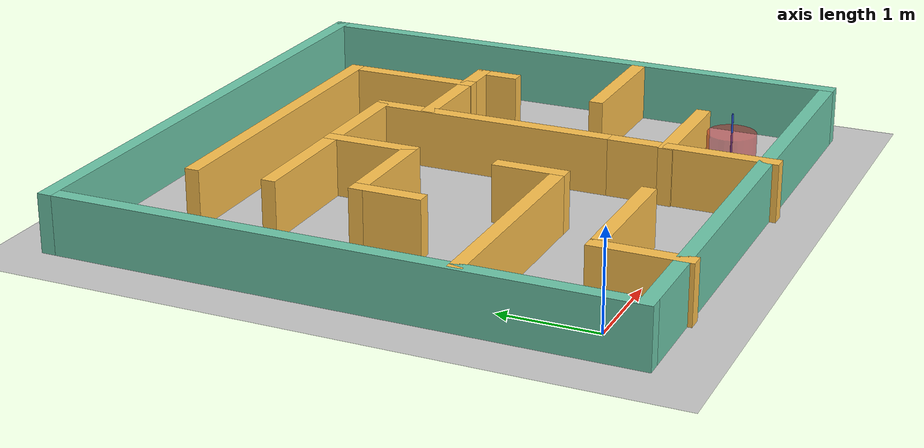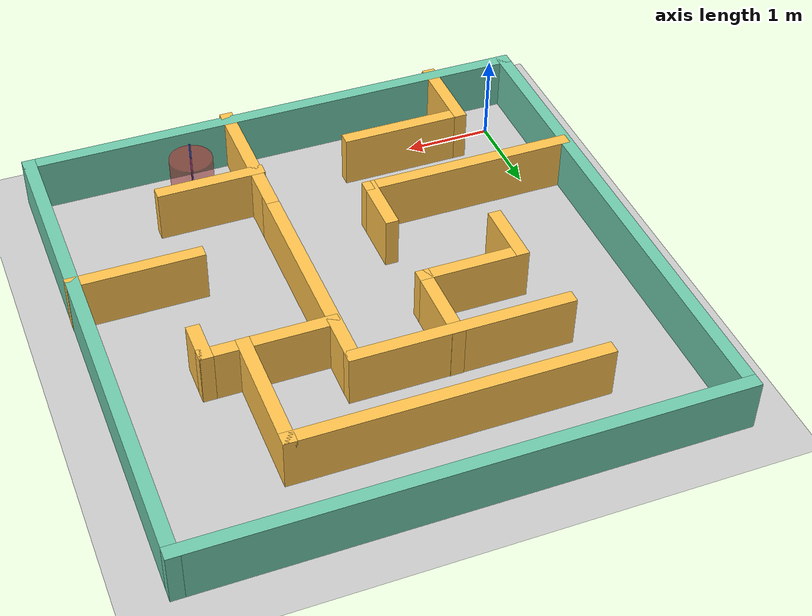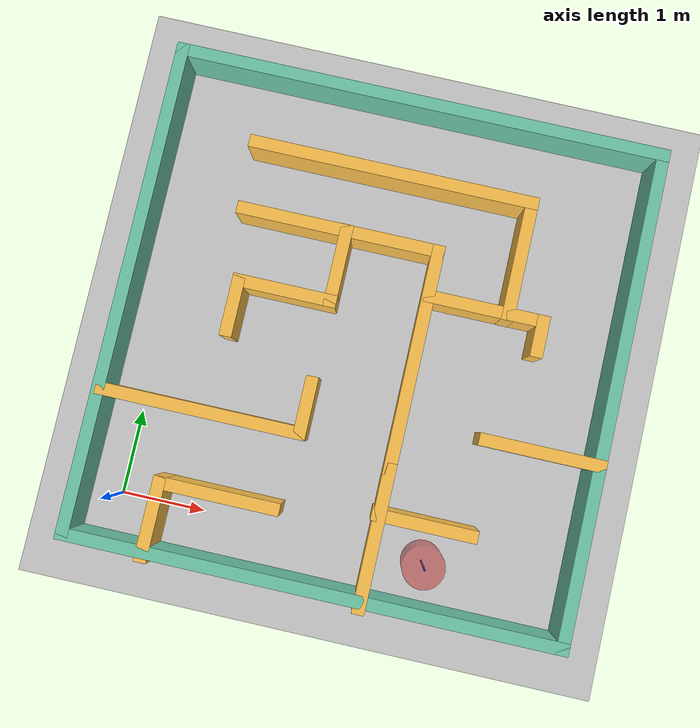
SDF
<sdf version="1.7">
 <world name="default">
  <light name="sun" type="directional">
   <pose>0 0 10 0 -0 0</pose>
   <diffuse>0.8 0.8 0.8 1</diffuse>
   <specular>0.2 0.2 0.2 1</specular>
   <attenuation>
    <range>1000</range>
    <constant>0.9</constant>
    <linear>0.01</linear>
    <quadratic>0.001</quadratic>
   </attenuation>
   <direction>-0.5 0.1 -0.9</direction>
   <spot><inner_angle>0</inner_angle><outer_angle>0</outer_angle><falloff>0</falloff></spot>
  </light>
  <model name="ground_plane">
   <static>1</static>
   <link name="link">
    <collision name="collision">
     <geometry><plane><normal>0 0 1</normal><size>100 100</size></plane></geometry>
     <surface><friction><ode><mu>100</mu><mu2>50</mu2></ode></friction></surface>
    </collision>
    <visual name="visual">
     <cast_shadows>0</cast_shadows>
     <geometry><plane><normal>0 0 1</normal><size>100 100</size></plane></geometry>
     <material>
      <script><uri>file://media/materials/scripts/gazebo.material</uri><name>Gazebo/Grey</name></script>
     </material>
    </visual>
   </link>
  </model>
  <gravity>0 0 -9.8</gravity>
  <magnetic_field>6e-06 2.3e-05 -4.2e-05</magnetic_field>
  <atmosphere type="adiabatic"/>
  <physics type="ode">
   <max_step_size>0.001</max_step_size>
   <real_time_factor>1</real_time_factor>
   <real_time_update_rate>1000</real_time_update_rate>
  </physics>
  <scene><ambient>0.4 0.4 0.4 1</ambient><background>0.7 0.7 0.7 1</background><shadows>1</shadows></scene>
  <audio><device>default</device></audio>
  <spherical_coordinates>
   <surface_model>EARTH_WGS84</surface_model>
   <latitude_deg>0</latitude_deg>
   <longitude_deg>0</longitude_deg>
   <elevation>0</elevation>
   <heading_deg>0</heading_deg>
  </spherical_coordinates>
  <model name="simple_maze">
   <pose>3.13892 2.35527 0 0 -0 0</pose>
   <link name="Wall_1">
    <collision name="Wall_1_Collision">
     <geometry><box><size>6 0.15 0.6</size></box></geometry>
     <pose>0 0 0.3 0 -0 0</pose>
    </collision>
    <visual name="Wall_1_Visual">
     <pose>0 0 0.3 0 -0 0</pose>
     <geometry><box><size>6 0.15 0.6</size></box></geometry>
     <material>
      <script><uri>file://media/materials/scripts/gazebo.material</uri><name>Gazebo/Grey</name></script>
      <ambient>0.435294 0.796078 0.67451 1</ambient>
     </material>
     <meta><layer>0</layer></meta>
    </visual>
    <pose>-3.58316 0.031695 0 0 -0 -1.5708</pose>
   </link>
   <link name="Wall_11">
    <collision name="Wall_11_Collision">
     <geometry><box><size>2.75 0.15 0.6</size></box></geometry>
     <pose>0 0 0.3 0 -0 0</pose>
    </collision>
    <visual name="Wall_11_Visual">
     <pose>0 0 0.3 0 -0 0</pose>
     <geometry><box><size>2.75 0.15 0.6</size></box></geometry>
     <material>
      <script><uri>file://media/materials/scripts/gazebo.material</uri><name>Gazebo/Grey</name></script>
      <ambient>1 0.764706 0.305882 1</ambient>
     </material>
     <meta><layer>0</layer></meta>
    </visual>
    <pose>-0.083403 -0.056695 0 0 -0 1.5708</pose>
   </link>
   <link name="Wall_12">
    <collision name="Wall_12_Collision">
     <geometry><box><size>2.5 0.15 0.6</size></box></geometry>
     <pose>0 0 0.3 0 -0 0</pose>
    </collision>
    <visual name="Wall_12_Visual">
     <pose>0 0 0.3 0 -0 0</pose>
     <geometry><box><size>2.5 0.15 0.6</size></box></geometry>
     <material>
      <script><uri>file://media/materials/scripts/gazebo.material</uri><name>Gazebo/Grey</name></script>
      <ambient>1 0.764706 0.305882 1</ambient>
     </material>
     <meta><layer>0</layer></meta>
    </visual>
    <pose>-1.2584 1.24331 0 0 -0 3.14159</pose>
   </link>
   <link name="Wall_14">
    <collision name="Wall_14_Collision">
     <geometry><box><size>1 0.15 0.6</size></box></geometry>
     <pose>0 0 0.3 0 -0 0</pose>
    </collision>
    <visual name="Wall_14_Visual">
     <pose>0 0 0.3 0 -0 0</pose>
     <geometry><box><size>1 0.15 0.6</size></box></geometry>
     <material>
      <script><uri>file://media/materials/scripts/gazebo.material</uri><name>Gazebo/Grey</name></script>
      <ambient>1 0.764706 0.305882 1</ambient>
     </material>
     <meta><layer>0</layer></meta>
    </visual>
    <pose>-1.18965 0.822041 0 0 -0 -1.5708</pose>
   </link>
   <link name="Wall_16">
    <collision name="Wall_16_Collision">
     <geometry><box><size>0.75 0.15 0.6</size></box></geometry>
     <pose>0 0 0.3 0 -0 0</pose>
    </collision>
    <visual name="Wall_16_Visual">
     <pose>0 0 0.3 0 -0 0</pose>
     <geometry><box><size>0.75 0.15 0.6</size></box></geometry>
     <material>
      <script><uri>file://media/materials/scripts/gazebo.material</uri><name>Gazebo/Grey</name></script>
      <ambient>1 0.764706 0.305882 1</ambient>
     </material>
     <meta><layer>0</layer></meta>
    </visual>
    <pose>-1.18965 -0.883294 0 0 -0 -1.5708</pose>
   </link>
   <link name="Wall_19">
    <collision name="Wall_19_Collision">
     <geometry><box><size>2.5 0.15 0.6</size></box></geometry>
     <pose>0 0 0.3 0 -0 0</pose>
    </collision>
    <visual name="Wall_19_Visual">
     <pose>0 0 0.3 0 -0 0</pose>
     <geometry><box><size>2.5 0.15 0.6</size></box></geometry>
     <material>
      <script><uri>file://media/materials/scripts/gazebo.material</uri><name>Gazebo/Grey</name></script>
      <ambient>1 0.764706 0.305882 1</ambient>
     </material>
     <meta><layer>0</layer></meta>
    </visual>
    <pose>-2.36465 -1.18329 0 0 -0 3.14159</pose>
   </link>
   <link name="Wall_2">
    <collision name="Wall_2_Collision">
     <geometry><box><size>6 0.15 0.6</size></box></geometry>
     <pose>0 0 0.3 0 -0 0</pose>
    </collision>
    <visual name="Wall_2_Visual">
     <pose>0 0 0.3 0 -0 0</pose>
     <geometry><box><size>6 0.15 0.6</size></box></geometry>
     <material>
      <script><uri>file://media/materials/scripts/gazebo.material</uri><name>Gazebo/Grey</name></script>
      <ambient>0.435294 0.796078 0.67451 1</ambient>
     </material>
     <meta><layer>0</layer></meta>
    </visual>
    <pose>-0.658165 -2.8933 0 0 -0 0</pose>
   </link>
   <link name="Wall_21">
    <collision name="Wall_21_Collision">
     <geometry><box><size>1.25 0.15 0.6</size></box></geometry>
     <pose>0 0 0.3 0 -0 0</pose>
    </collision>
    <visual name="Wall_21_Visual">
     <pose>0 0 0.3 0 -0 0</pose>
     <geometry><box><size>1.25 0.15 0.6</size></box></geometry>
     <material>
      <script><uri>file://media/materials/scripts/gazebo.material</uri><name>Gazebo/Grey</name></script>
      <ambient>1 0.764706 0.305882 1</ambient>
     </material>
     <meta><layer>0</layer></meta>
    </visual>
    <pose>-1.73965 0.397041 0 0 -0 3.14159</pose>
   </link>
   <link name="Wall_22">
    <collision name="Wall_22_Collision">
     <geometry><box><size>0.75 0.15 0.6</size></box></geometry>
     <pose>0 0 0.3 0 -0 0</pose>
    </collision>
    <visual name="Wall_22_Visual">
     <pose>0 0 0.3 0 -0 0</pose>
     <geometry><box><size>0.75 0.15 0.6</size></box></geometry>
     <material>
      <script><uri>file://media/materials/scripts/gazebo.material</uri><name>Gazebo/Grey</name></script>
      <ambient>1 0.764706 0.305882 1</ambient>
     </material>
     <meta><layer>0</layer></meta>
    </visual>
    <pose>-2.28965 0.097041 0 0 -0 -1.5708</pose>
   </link>
   <link name="Wall_24">
    <collision name="Wall_24_Collision">
     <geometry><box><size>1.25 0.15 0.6</size></box></geometry>
     <pose>0 0 0.3 0 -0 0</pose>
    </collision>
    <visual name="Wall_24_Visual">
     <pose>0 0 0.3 0 -0 0</pose>
     <geometry><box><size>1.25 0.15 0.6</size></box></geometry>
     <material>
      <script><uri>file://media/materials/scripts/gazebo.material</uri><name>Gazebo/Grey</name></script>
      <ambient>1 0.764706 0.305882 1</ambient>
     </material>
     <meta><layer>0</layer></meta>
    </visual>
    <pose>0.446484 -1.89068 0 0 -0 0</pose>
   </link>
   <link name="Wall_26">
    <collision name="Wall_26_Collision">
     <geometry><box><size>1.5 0.15 0.6</size></box></geometry>
     <pose>0 0 0.3 0 -0 0</pose>
    </collision>
    <visual name="Wall_26_Visual">
     <pose>0 0 0.3 0 -0 0</pose>
     <geometry><box><size>1.5 0.15 0.6</size></box></geometry>
     <material>
      <script><uri>file://media/materials/scripts/gazebo.material</uri><name>Gazebo/Grey</name></script>
      <ambient>1 0.764706 0.305882 1</ambient>
     </material>
     <meta><layer>0</layer></meta>
    </visual>
    <pose>1.59489 -0.78443 0 0 -0 3.14159</pose>
   </link>
   <link name="Wall_28">
    <collision name="Wall_28_Collision">
     <geometry><box><size>1.5 0.15 0.6</size></box></geometry>
     <pose>0 0 0.3 0 -0 0</pose>
    </collision>
    <visual name="Wall_28_Visual">
     <pose>0 0 0.3 0 -0 0</pose>
     <geometry><box><size>1.5 0.15 0.6</size></box></geometry>
     <material>
      <script><uri>file://media/materials/scripts/gazebo.material</uri><name>Gazebo/Grey</name></script>
      <ambient>1 0.764706 0.305882 1</ambient>
     </material>
     <meta><layer>0</layer></meta>
    </visual>
    <pose>0.611711 0.703975 0 0 -0 0</pose>
   </link>
   <link name="Wall_3">
    <collision name="Wall_3_Collision">
     <geometry><box><size>6 0.15 0.6</size></box></geometry>
     <pose>0 0 0.3 0 -0 0</pose>
    </collision>
    <visual name="Wall_3_Visual">
     <pose>0 0 0.3 0 -0 0</pose>
     <geometry><box><size>6 0.15 0.6</size></box></geometry>
     <material>
      <script><uri>file://media/materials/scripts/gazebo.material</uri><name>Gazebo/Grey</name></script>
      <ambient>0.435294 0.796078 0.67451 1</ambient>
     </material>
     <meta><layer>0</layer></meta>
    </visual>
    <pose>2.26684 0.031695 0 0 -0 1.5708</pose>
   </link>
   <link name="Wall_32">
    <collision name="Wall_32_Collision">
     <geometry><box><size>3.5 0.15 0.6</size></box></geometry>
     <pose>0 0 0.3 0 -0 0</pose>
    </collision>
    <visual name="Wall_32_Visual">
     <pose>0 0 0.3 0 -0 0</pose>
     <geometry><box><size>3.5 0.15 0.6</size></box></geometry>
     <material>
      <script><uri>file://media/materials/scripts/gazebo.material</uri><name>Gazebo/Grey</name></script>
      <ambient>1 0.764706 0.305882 1</ambient>
     </material>
     <meta><layer>0</layer></meta>
    </visual>
    <pose>-0.801918 2.05158 0 0 -0 0</pose>
   </link>
   <link name="Wall_33">
    <collision name="Wall_33_Collision">
     <geometry><box><size>1.5 0.15 0.6</size></box></geometry>
     <pose>0 0 0.3 0 -0 0</pose>
    </collision>
    <visual name="Wall_33_Visual">
     <pose>0 0 0.3 0 -0 0</pose>
     <geometry><box><size>1.5 0.15 0.6</size></box></geometry>
     <material>
      <script><uri>file://media/materials/scripts/gazebo.material</uri><name>Gazebo/Grey</name></script>
      <ambient>1 0.764706 0.305882 1</ambient>
     </material>
     <meta><layer>0</layer></meta>
    </visual>
    <pose>0.873082 1.37658 0 0 -0 -1.5708</pose>
   </link>
   <link name="Wall_37">
    <collision name="Wall_37_Collision">
     <geometry><box><size>0.5 0.15 0.6</size></box></geometry>
     <pose>0 0 0.3 0 -0 0</pose>
    </collision>
    <visual name="Wall_37_Visual">
     <pose>0 0 0.3 0 -0 0</pose>
     <geometry><box><size>0.5 0.15 0.6</size></box></geometry>
     <material>
      <script><uri>file://media/materials/scripts/gazebo.material</uri><name>Gazebo/Grey</name></script>
      <ambient>1 0.764706 0.305882 1</ambient>
     </material>
     <meta><layer>0</layer></meta>
    </visual>
    <pose>1.28671 0.528975 0 0 -0 -1.5708</pose>
   </link>
   <link name="Wall_4">
    <collision name="Wall_4_Collision">
     <geometry><box><size>6 0.15 0.6</size></box></geometry>
     <pose>0 0 0.3 0 -0 0</pose>
    </collision>
    <visual name="Wall_4_Visual">
     <pose>0 0 0.3 0 -0 0</pose>
     <geometry><box><size>6 0.15 0.6</size></box></geometry>
     <material>
      <script><uri>file://media/materials/scripts/gazebo.material</uri><name>Gazebo/Grey</name></script>
      <ambient>0.435294 0.796078 0.67451 1</ambient>
     </material>
     <meta><layer>0</layer></meta>
    </visual>
    <pose>-0.658165 2.95669 0 0 -0 3.14159</pose>
   </link>
   <link name="Wall_6">
    <collision name="Wall_6_Collision">
     <geometry><box><size>1 0.15 0.6</size></box></geometry>
     <pose>0 0 0.3 0 -0 0</pose>
    </collision>
    <visual name="Wall_6_Visual">
     <pose>0 0 0.3 0 -0 0</pose>
     <geometry><box><size>1 0.15 0.6</size></box></geometry>
     <material>
      <script><uri>file://media/materials/scripts/gazebo.material</uri><name>Gazebo/Grey</name></script>
      <ambient>1 0.764706 0.305882 1</ambient>
     </material>
     <meta><layer>0</layer></meta>
    </visual>
    <pose>-2.63783 -2.51158 0 0 -0 1.5708</pose>
   </link>
   <link name="Wall_7">
    <collision name="Wall_7_Collision">
     <geometry><box><size>1.5 0.15 0.6</size></box></geometry>
     <pose>0 0 0.3 0 -0 0</pose>
    </collision>
    <visual name="Wall_7_Visual">
     <pose>0 0 0.3 0 -0 0</pose>
     <geometry><box><size>1.5 0.15 0.6</size></box></geometry>
     <material>
      <script><uri>file://media/materials/scripts/gazebo.material</uri><name>Gazebo/Grey</name></script>
      <ambient>1 0.764706 0.305882 1</ambient>
     </material>
     <meta><layer>0</layer></meta>
    </visual>
    <pose>-1.96283 -2.08658 0 0 -0 0</pose>
   </link>
   <link name="Wall_9">
    <collision name="Wall_9_Collision">
     <geometry><box><size>1.75 0.15 0.6</size></box></geometry>
     <pose>0 0 0.3 0 -0 0</pose>
    </collision>
    <visual name="Wall_9_Visual">
     <pose>0 0 0.3 0 -0 0</pose>
     <geometry><box><size>1.75 0.15 0.6</size></box></geometry>
     <material>
      <script><uri>file://media/materials/scripts/gazebo.material</uri><name>Gazebo/Grey</name></script>
      <ambient>1 0.764706 0.305882 1</ambient>
     </material>
     <meta><layer>0</layer></meta>
    </visual>
    <pose>-0.083403 -2.1567 0 0 -0 1.5708</pose>
   </link>
   <static>1</static>
  </model>
  <model name="goal">
   <static>true</static>
   <pose>3.67463 0.0 0.3 0 0 0</pose>
   <link name="link">
    <visual name="visual">
     <geometry><cylinder><radius>0.25</radius><length>0.6</length></cylinder></geometry>
     <material>
      <script><name>Gazebo/RedTransparent</name><uri>file://media/materials/scripts/gazebo.material</uri></script>
     </material>
    </visual>
   </link>
   <link name="link2">
    <visual name="visual2">
     <geometry><cylinder><radius>0.01</radius><length>1</length></cylinder></geometry>
     <material>
      <script><name>Gazebo/Blue</name><uri>file://media/materials/scripts/gazebo.material</uri></script>
     </material>
    </visual>
   </link>
  </model>
 </world>
</sdf>
